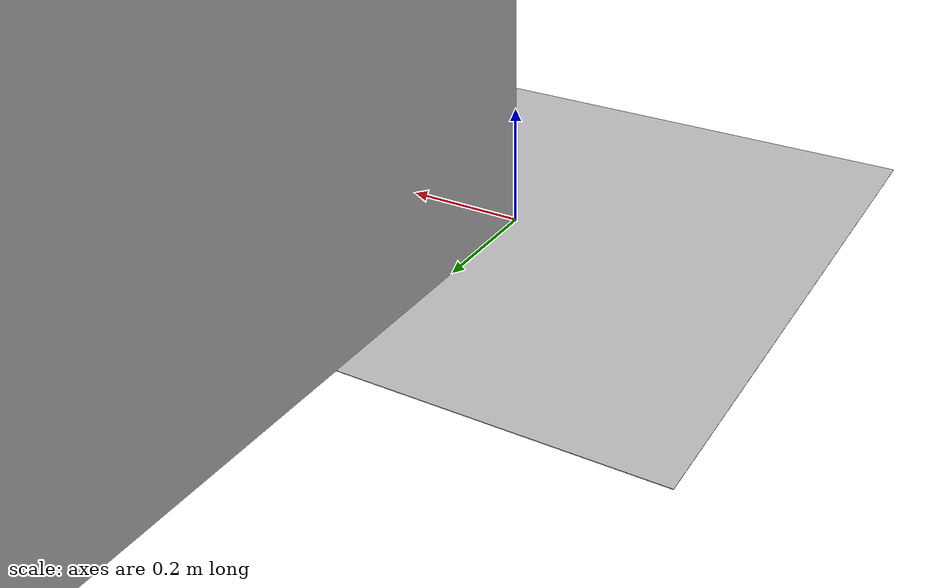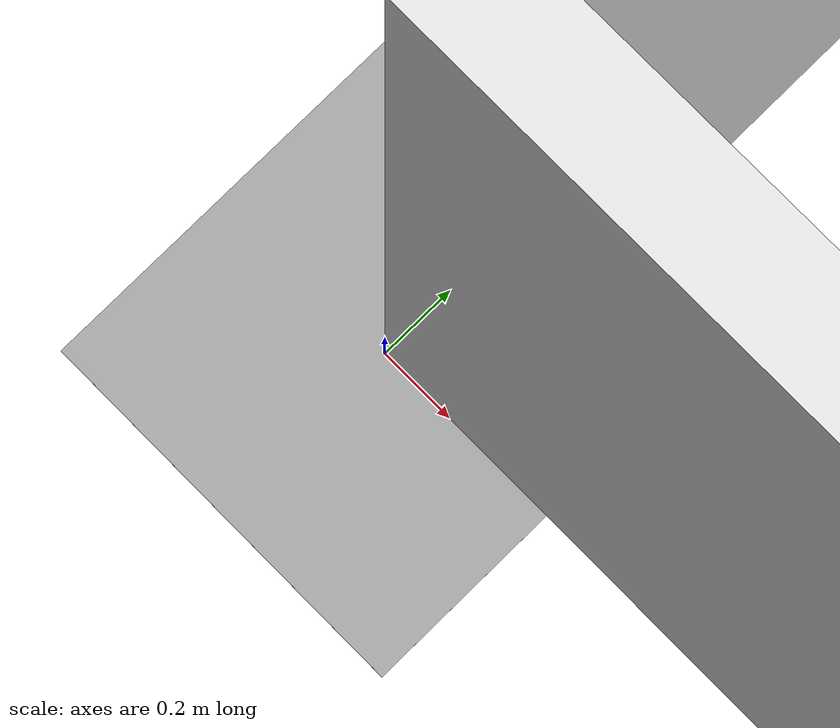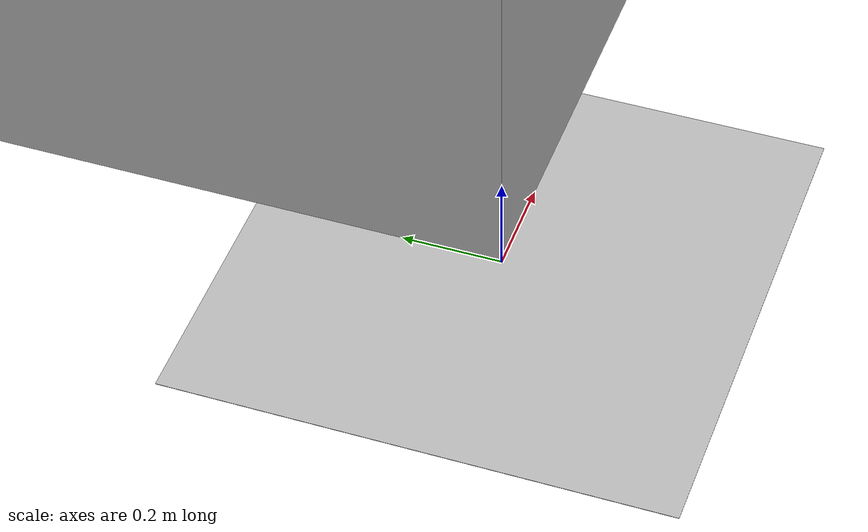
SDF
<?xml version ='1.0'?>
<gazebo version='1.2'>
<world name='default'>
  <scene>
    <ambient>0.500000 0.500000 0.500000 1.000000</ambient>
    <background>0.500000 0.500000 0.500000 1.000000</background>
    <shadows>0</shadows>
    <grid>false</grid>
  </scene>
  <physics type='ode'>
    <gravity>0.000000 0.000000 -9.800000</gravity>
    <ode>
      <solver>
        <type>quick</type>
        <dt>0.001000</dt>
        <iters>10</iters>
        <sor>1.300000</sor>
      </solver>
      <constraints>
        <cfm>0.000000</cfm>
        <erp>0.200000</erp>
        <contact_max_correcting_vel>100.000000</contact_max_correcting_vel>
        <contact_surface_layer>0.001000</contact_surface_layer>
      </constraints>
    </ode>
    <update_rate>1000.000000</update_rate>
  </physics>
  <model name='plane1_model'>
    <link name='body'>
      <collision name='geom_1'>
        <geometry>
          <plane>
            <normal>0.000000 0.000000 1.000000</normal>
            <size>1.000000 1.000000</size>
          </plane>
        </geometry>
        <surface>
          <friction>
            <ode>
              <mu>10.000000</mu>
              <mu2>10.000000</mu2>
              <fdir1>0.000000 0.000000 0.000000</fdir1>
              <slip1>0.000000</slip1>
              <slip2>0.000000</slip2>
            </ode>
          </friction>
          <bounce>
            <restitution_coefficient>0.000000</restitution_coefficient>
            <threshold>1000000.000000</threshold>
          </bounce>
          <contact>
            <ode>
              <soft_cfm>0.000000</soft_cfm>
              <soft_erp>0.200000</soft_erp>
              <kp>10000000000.000000</kp>
              <kd>1.000000</kd>
              <max_vel>100.000000</max_vel>
              <min_depth>0.000100</min_depth>
            </ode>
          </contact>
        </surface>
      </collision>
      <visual name='visual_1'>
        <geometry>
          <plane>
            <normal>0.000000 0.000000 1.000000</normal>
            <size>1.000000 1.000000</size>
          </plane>
        </geometry>
        <material>
          <script>
            <name>__default__</name>
          </script>
        </material>
        <cast_shadows>0</cast_shadows>
      </visual>
      <velocity_decay>
        <linear>0.000000</linear>
        <angular>0.000000</angular>
      </velocity_decay>
      <self_collide>0</self_collide>
      <kinematic>0</kinematic>
    </link>
    <static>1</static>
  </model>
  <model name='walls_model'>
    <pose>0.000000 0.000000 0.000000 0.000000 -0.000000 0.000000</pose>
    <link name='body'>
      <collision name='geom_1'>
        <geometry>
          <mesh>
            <uri>exp1.dae</uri>
          </mesh>
        </geometry>
        <surface>
          <bounce/>
          <friction>
            <ode/>
          </friction>
          <contact>
            <ode/>
          </contact>
        </surface>
      </collision>
      <visual name='visual_1'>
        <geometry>
          <mesh>
            <uri>exp1.dae</uri>
          </mesh>
        </geometry>
        <material>
          <script>
            <name>__default__</name>
          </script>
        </material>
        <cast_shadows>0</cast_shadows>
      </visual>
      <velocity_decay>
        <linear>0.000000</linear>
        <angular>0.000000</angular>
      </velocity_decay>
      <self_collide>0</self_collide>
      <kinematic>0</kinematic>
    </link>
    <static>1</static>
  </model>
  <light name='my_light' type='directional'>
    <pose>0.000000 0.000000 30.000000 0.000000 -0.000000 0.000000</pose>
    <diffuse>0.900000 0.900000 0.900000 1.000000</diffuse>
    <specular>0.100000 0.100000 0.100000 1.000000</specular>
    <attenuation>
      <range>20.000000</range>
    </attenuation>
    <direction>0.000000 0.000000 -1.000000</direction>
    <cast_shadows>0</cast_shadows>
  </light>
</world>
</gazebo>
